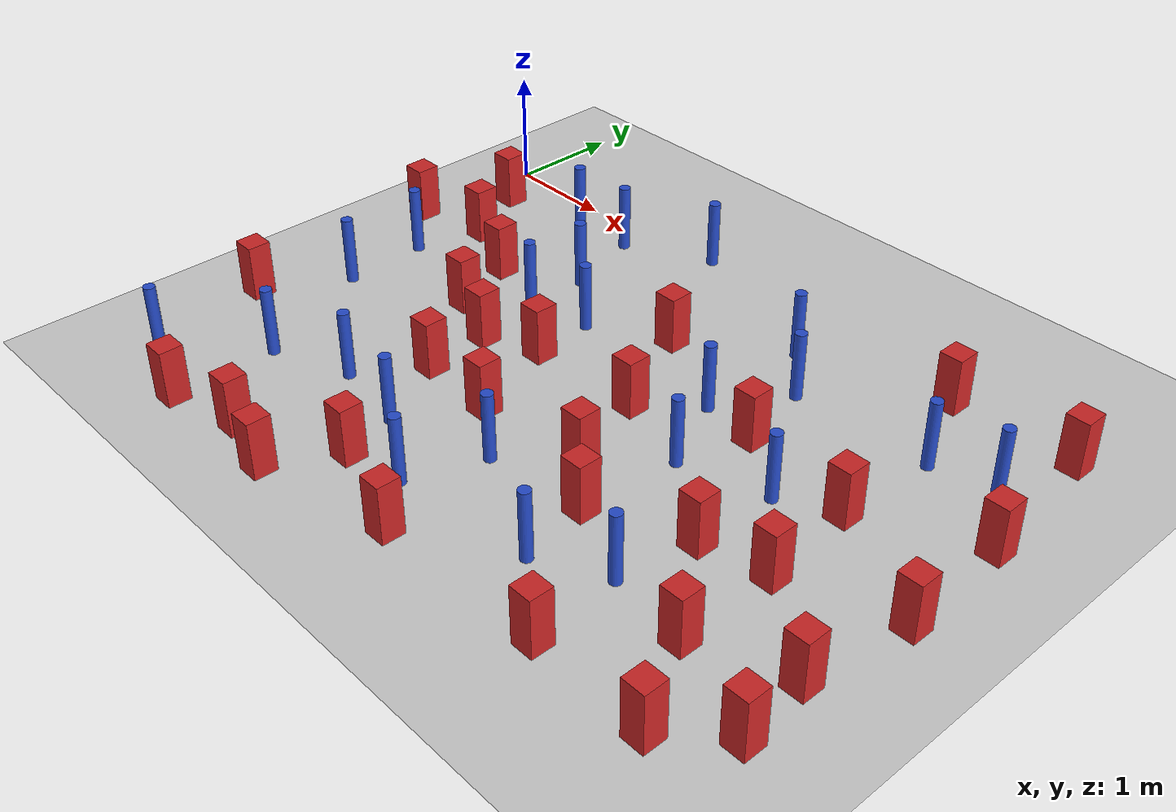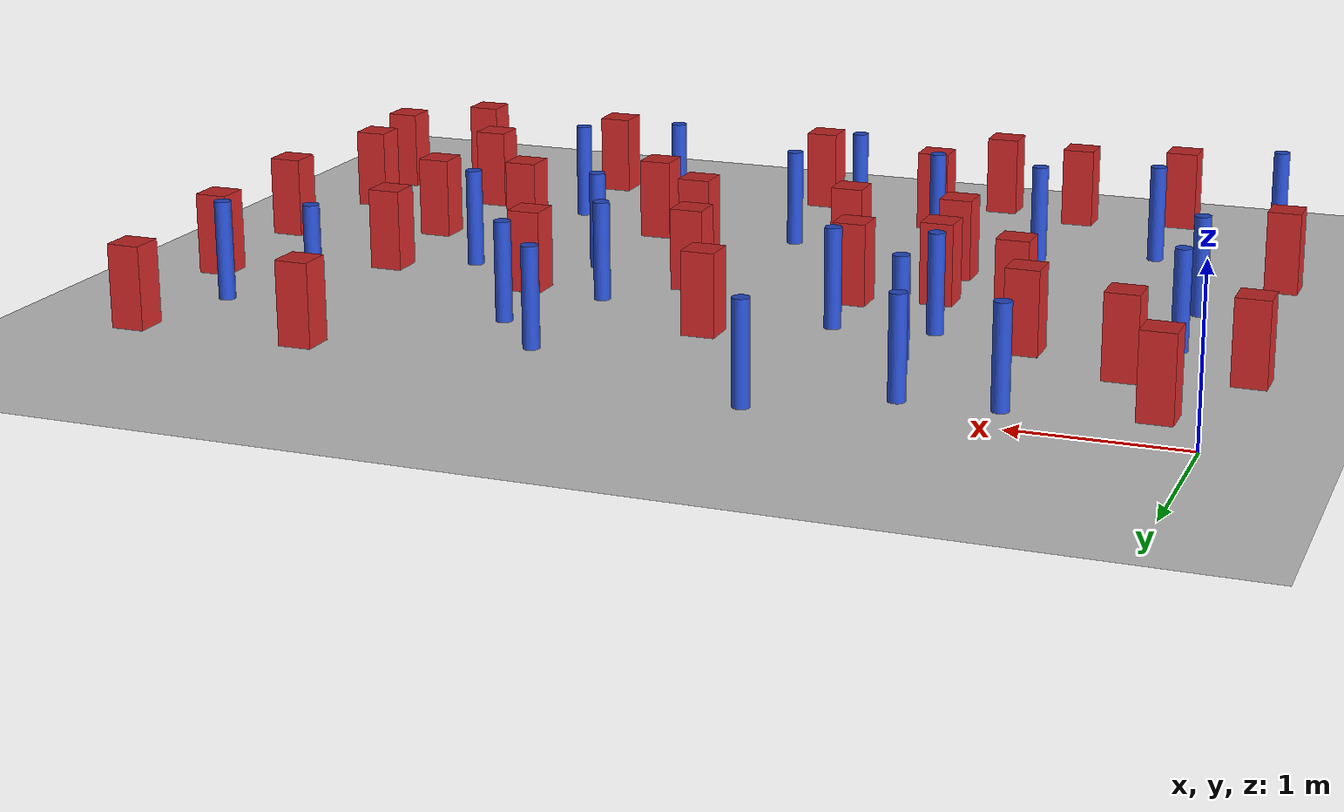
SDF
<sdf version="1.6">
 <world name="default">
  <model name="ground_plane">
   <static>1</static>
   <link name="link">
    <collision name="collision">
     <geometry><plane><normal>0 0 1</normal><size>100 100</size></plane></geometry>
     <surface><friction><ode><mu>100</mu><mu2>50</mu2></ode></friction></surface>
    </collision>
    <visual name="visual">
     <cast_shadows>0</cast_shadows>
     <geometry><plane><normal>0 0 1</normal><size>100 100</size></plane></geometry>
     <material>
      <ambient>1.0 1.0 1.0 1.0</ambient>
      <diffuse>0.8 0.8 0.8 1.0</diffuse>
      <specular>0.01 0.01 0.01 1.000000</specular>
     </material>
    </visual>
   </link>
  </model>
  <model name="NamedLocations">
   <static>true</static>
   <link name="DefaultStart"><pose>8.5 0 0 0 0 3.14</pose></link>
  </model>
  <model name="square_post_obstacle3">
   <static>true</static>
   <pose>3.03705830512 -1.04017219232 8.22691968438e-08 7.2212513382e-06 -7.54495500217e-07 2.29674213826e-05</pose>
   <link name="link">
    <pose>0 0 0.25 0 -0 0</pose>
    <inertial>
     <mass>100</mass>
     <inertia>
      <ixx>0.166667</ixx>
      <ixy>0</ixy>
      <ixz>0</ixz>
      <iyy>0.166667</iyy>
      <iyz>0</iyz>
      <izz>0.166667</izz>
     </inertia>
    </inertial>
    <collision name="collision"><geometry><box><size>.2 .2 .5</size></box></geometry></collision>
    <visual name="visual">
     <geometry><box><size>.2 .2 .5</size></box></geometry>
     <material>
      <script><name>Gazebo/Red</name><uri>file://media/materials/scripts/gazebo.material</uri></script>
     </material>
    </visual>
   </link>
  </model>
  <model name="square_post_obstacle12">
   <static>true</static>
   <pose>1.9961251198 -2.69683768258 8.22691968438e-08 7.2212513382e-06 -7.54495500217e-07 2.29674213826e-05</pose>
   <link name="link">
    <pose>0 0 0.25 0 -0 0</pose>
    <inertial>
     <mass>100</mass>
     <inertia>
      <ixx>0.166667</ixx>
      <ixy>0</ixy>
      <ixz>0</ixz>
      <iyy>0.166667</iyy>
      <iyz>0</iyz>
      <izz>0.166667</izz>
     </inertia>
    </inertial>
    <collision name="collision"><geometry><box><size>.2 .2 .5</size></box></geometry></collision>
    <visual name="visual">
     <geometry><box><size>.2 .2 .5</size></box></geometry>
     <material>
      <script><name>Gazebo/Red</name><uri>file://media/materials/scripts/gazebo.material</uri></script>
     </material>
    </visual>
   </link>
  </model>
  <model name="pole_obstacle9">
   <static>true</static>
   <pose>5.42084835923 -0.801809787041 2.88873142074e-08 -9.90536689837e-09 4.60219948989e-07 -1.2096599496e-07</pose>
   <link name="link">
    <pose>0 0 0.3 0 -0 0</pose>
    <inertial>
     <mass>1</mass>
     <inertia><ixx>0.145833</ixx><ixy>0</ixy><ixz>0</ixz><iyy>0.145833</iyy><iyz>0</iyz><izz>0.125</izz></inertia>
    </inertial>
    <collision name="collision">
     <geometry><cylinder><radius>0.05</radius><length>.6</length></cylinder></geometry>
    </collision>
    <visual name="visual">
     <geometry><cylinder><radius>0.05</radius><length>.6</length></cylinder></geometry>
     <material>
      <script><name>Gazebo/Blue</name><uri>file://media/materials/scripts/gazebo.material</uri></script>
     </material>
    </visual>
   </link>
  </model>
  <model name="square_post_obstacle18">
   <static>true</static>
   <pose>4.81835636104 -4.06285529954 8.22691968438e-08 7.2212513382e-06 -7.54495500217e-07 2.29674213826e-05</pose>
   <link name="link">
    <pose>0 0 0.25 0 -0 0</pose>
    <inertial>
     <mass>100</mass>
     <inertia>
      <ixx>0.166667</ixx>
      <ixy>0</ixy>
      <ixz>0</ixz>
      <iyy>0.166667</iyy>
      <iyz>0</iyz>
      <izz>0.166667</izz>
     </inertia>
    </inertial>
    <collision name="collision"><geometry><box><size>.2 .2 .5</size></box></geometry></collision>
    <visual name="visual">
     <geometry><box><size>.2 .2 .5</size></box></geometry>
     <material>
      <script><name>Gazebo/Red</name><uri>file://media/materials/scripts/gazebo.material</uri></script>
     </material>
    </visual>
   </link>
  </model>
  <model name="pole_obstacle14">
   <static>true</static>
   <pose>1.79109142378 -1.48081458562 2.88873142074e-08 -9.90536689672e-09 4.60219948993e-07 -1.20965994959e-07</pose>
   <link name="link">
    <pose>0 0 0.3 0 -0 0</pose>
    <inertial>
     <mass>1</mass>
     <inertia><ixx>0.145833</ixx><ixy>0</ixy><ixz>0</ixz><iyy>0.145833</iyy><iyz>0</iyz><izz>0.125</izz></inertia>
    </inertial>
    <collision name="collision">
     <geometry><cylinder><radius>0.05</radius><length>.6</length></cylinder></geometry>
    </collision>
    <visual name="visual">
     <geometry><cylinder><radius>0.05</radius><length>.6</length></cylinder></geometry>
     <material>
      <script><name>Gazebo/Blue</name><uri>file://media/materials/scripts/gazebo.material</uri></script>
     </material>
    </visual>
   </link>
  </model>
  <model name="pole_obstacle20">
   <static>true</static>
   <pose>4.75549394992 -3.29048217303 2.88873142074e-08 -9.90536690245e-09 4.6021994898e-07 -1.20965994966e-07</pose>
   <link name="link">
    <pose>0 0 0.3 0 -0 0</pose>
    <inertial>
     <mass>1</mass>
     <inertia><ixx>0.145833</ixx><ixy>0</ixy><ixz>0</ixz><iyy>0.145833</iyy><iyz>0</iyz><izz>0.125</izz></inertia>
    </inertial>
    <collision name="collision">
     <geometry><cylinder><radius>0.05</radius><length>.6</length></cylinder></geometry>
    </collision>
    <visual name="visual">
     <geometry><cylinder><radius>0.05</radius><length>.6</length></cylinder></geometry>
     <material>
      <script><name>Gazebo/Blue</name><uri>file://media/materials/scripts/gazebo.material</uri></script>
     </material>
    </visual>
   </link>
  </model>
  <model name="pole_obstacle27">
   <static>true</static>
   <pose>0.276519090718 -4.1411408936 2.88873142074e-08 -9.90536689592e-09 4.60219948995e-07 -1.20965994956e-07</pose>
   <link name="link">
    <pose>0 0 0.3 0 -0 0</pose>
    <inertial>
     <mass>1</mass>
     <inertia><ixx>0.145833</ixx><ixy>0</ixy><ixz>0</ixz><iyy>0.145833</iyy><iyz>0</iyz><izz>0.125</izz></inertia>
    </inertial>
    <collision name="collision">
     <geometry><cylinder><radius>0.05</radius><length>.6</length></cylinder></geometry>
    </collision>
    <visual name="visual">
     <geometry><cylinder><radius>0.05</radius><length>.6</length></cylinder></geometry>
     <material>
      <script><name>Gazebo/Blue</name><uri>file://media/materials/scripts/gazebo.material</uri></script>
     </material>
    </visual>
   </link>
  </model>
  <model name="pole_obstacle36">
   <static>true</static>
   <pose>2.37809489842 0.126536309214 2.88873142074e-08 -9.90536689314e-09 4.60219949002e-07 -1.20965994953e-07</pose>
   <link name="link">
    <pose>0 0 0.3 0 -0 0</pose>
    <inertial>
     <mass>1</mass>
     <inertia><ixx>0.145833</ixx><ixy>0</ixy><ixz>0</ixz><iyy>0.145833</iyy><iyz>0</iyz><izz>0.125</izz></inertia>
    </inertial>
    <collision name="collision">
     <geometry><cylinder><radius>0.05</radius><length>.6</length></cylinder></geometry>
    </collision>
    <visual name="visual">
     <geometry><cylinder><radius>0.05</radius><length>.6</length></cylinder></geometry>
     <material>
      <script><name>Gazebo/Blue</name><uri>file://media/materials/scripts/gazebo.material</uri></script>
     </material>
    </visual>
   </link>
  </model>
  <model name="square_post_obstacle36">
   <static>true</static>
   <pose>1.43506323926 -1.91082934601 8.22691968438e-08 7.2212513382e-06 -7.54495500217e-07 2.29674213826e-05</pose>
   <link name="link">
    <pose>0 0 0.25 0 -0 0</pose>
    <inertial>
     <mass>100</mass>
     <inertia>
      <ixx>0.166667</ixx>
      <ixy>0</ixy>
      <ixz>0</ixz>
      <iyy>0.166667</iyy>
      <iyz>0</iyz>
      <izz>0.166667</izz>
     </inertia>
    </inertial>
    <collision name="collision"><geometry><box><size>.2 .2 .5</size></box></geometry></collision>
    <visual name="visual">
     <geometry><box><size>.2 .2 .5</size></box></geometry>
     <material>
      <script><name>Gazebo/Red</name><uri>file://media/materials/scripts/gazebo.material</uri></script>
     </material>
    </visual>
   </link>
  </model>
  <model name="square_post_obstacle39">
   <static>true</static>
   <pose>0.291065183571 -0.443880941189 8.22691968438e-08 7.2212513382e-06 -7.54495500217e-07 2.29674213826e-05</pose>
   <link name="link">
    <pose>0 0 0.25 0 -0 0</pose>
    <inertial>
     <mass>100</mass>
     <inertia>
      <ixx>0.166667</ixx>
      <ixy>0</ixy>
      <ixz>0</ixz>
      <iyy>0.166667</iyy>
      <iyz>0</iyz>
      <izz>0.166667</izz>
     </inertia>
    </inertial>
    <collision name="collision"><geometry><box><size>.2 .2 .5</size></box></geometry></collision>
    <visual name="visual">
     <geometry><box><size>.2 .2 .5</size></box></geometry>
     <material>
      <script><name>Gazebo/Red</name><uri>file://media/materials/scripts/gazebo.material</uri></script>
     </material>
    </visual>
   </link>
  </model>
  <model name="pole_obstacle40">
   <static>true</static>
   <pose>0.934463896359 -3.48514730612 2.88873142074e-08 -9.90536689636e-09 4.60219948994e-07 -1.20965994958e-07</pose>
   <link name="link">
    <pose>0 0 0.3 0 -0 0</pose>
    <inertial>
     <mass>1</mass>
     <inertia><ixx>0.145833</ixx><ixy>0</ixy><ixz>0</ixz><iyy>0.145833</iyy><iyz>0</iyz><izz>0.125</izz></inertia>
    </inertial>
    <collision name="collision">
     <geometry><cylinder><radius>0.05</radius><length>.6</length></cylinder></geometry>
    </collision>
    <visual name="visual">
     <geometry><cylinder><radius>0.05</radius><length>.6</length></cylinder></geometry>
     <material>
      <script><name>Gazebo/Blue</name><uri>file://media/materials/scripts/gazebo.material</uri></script>
     </material>
    </visual>
   </link>
  </model>
  <model name="pole_obstacle44">
   <static>true</static>
   <pose>4.18805613553 -3.57865037211 2.88873142074e-08 -9.90536690245e-09 4.6021994898e-07 -1.20965994966e-07</pose>
   <link name="link">
    <pose>0 0 0.3 0 -0 0</pose>
    <inertial>
     <mass>1</mass>
     <inertia><ixx>0.145833</ixx><ixy>0</ixy><ixz>0</ixz><iyy>0.145833</iyy><iyz>0</iyz><izz>0.125</izz></inertia>
    </inertial>
    <collision name="collision">
     <geometry><cylinder><radius>0.05</radius><length>.6</length></cylinder></geometry>
    </collision>
    <visual name="visual">
     <geometry><cylinder><radius>0.05</radius><length>.6</length></cylinder></geometry>
     <material>
      <script><name>Gazebo/Blue</name><uri>file://media/materials/scripts/gazebo.material</uri></script>
     </material>
    </visual>
   </link>
  </model>
  <model name="square_post_obstacle43">
   <static>true</static>
   <pose>3.32970911712 -4.12108888041 8.22691968438e-08 7.22125133819e-06 -7.54495500217e-07 2.29674213826e-05</pose>
   <link name="link">
    <pose>0 0 0.25 0 -0 0</pose>
    <inertial>
     <mass>100</mass>
     <inertia>
      <ixx>0.166667</ixx>
      <ixy>0</ixy>
      <ixz>0</ixz>
      <iyy>0.166667</iyy>
      <iyz>0</iyz>
      <izz>0.166667</izz>
     </inertia>
    </inertial>
    <collision name="collision"><geometry><box><size>.2 .2 .5</size></box></geometry></collision>
    <visual name="visual">
     <geometry><box><size>.2 .2 .5</size></box></geometry>
     <material>
      <script><name>Gazebo/Red</name><uri>file://media/materials/scripts/gazebo.material</uri></script>
     </material>
    </visual>
   </link>
  </model>
  <model name="square_post_obstacle49">
   <static>true</static>
   <pose>2.70418464401 -2.73662805197 8.22691968438e-08 7.2212513382e-06 -7.54495500217e-07 2.29674213826e-05</pose>
   <link name="link">
    <pose>0 0 0.25 0 -0 0</pose>
    <inertial>
     <mass>100</mass>
     <inertia>
      <ixx>0.166667</ixx>
      <ixy>0</ixy>
      <ixz>0</ixz>
      <iyy>0.166667</iyy>
      <iyz>0</iyz>
      <izz>0.166667</izz>
     </inertia>
    </inertial>
    <collision name="collision"><geometry><box><size>.2 .2 .5</size></box></geometry></collision>
    <visual name="visual">
     <geometry><box><size>.2 .2 .5</size></box></geometry>
     <material>
      <script><name>Gazebo/Red</name><uri>file://media/materials/scripts/gazebo.material</uri></script>
     </material>
    </visual>
   </link>
  </model>
  <model name="square_post_obstacle54">
   <static>true</static>
   <pose>3.44279602956 -1.89878284545 8.22691968438e-08 7.2212513382e-06 -7.54495500217e-07 2.29674213826e-05</pose>
   <link name="link">
    <pose>0 0 0.25 0 -0 0</pose>
    <inertial>
     <mass>100</mass>
     <inertia>
      <ixx>0.166667</ixx>
      <ixy>0</ixy>
      <ixz>0</ixz>
      <iyy>0.166667</iyy>
      <iyz>0</iyz>
      <izz>0.166667</izz>
     </inertia>
    </inertial>
    <collision name="collision"><geometry><box><size>.2 .2 .5</size></box></geometry></collision>
    <visual name="visual">
     <geometry><box><size>.2 .2 .5</size></box></geometry>
     <material>
      <script><name>Gazebo/Red</name><uri>file://media/materials/scripts/gazebo.material</uri></script>
     </material>
    </visual>
   </link>
  </model>
  <model name="square_post_obstacle55">
   <static>true</static>
   <pose>6.15597478528 -0.0342775204876 8.22691968438e-08 7.2212513382e-06 -7.54495500217e-07 2.29674213826e-05</pose>
   <link name="link">
    <pose>0 0 0.25 0 -0 0</pose>
    <inertial>
     <mass>100</mass>
     <inertia>
      <ixx>0.166667</ixx>
      <ixy>0</ixy>
      <ixz>0</ixz>
      <iyy>0.166667</iyy>
      <iyz>0</iyz>
      <izz>0.166667</izz>
     </inertia>
    </inertial>
    <collision name="collision"><geometry><box><size>.2 .2 .5</size></box></geometry></collision>
    <visual name="visual">
     <geometry><box><size>.2 .2 .5</size></box></geometry>
     <material>
      <script><name>Gazebo/Red</name><uri>file://media/materials/scripts/gazebo.material</uri></script>
     </material>
    </visual>
   </link>
  </model>
  <model name="square_post_obstacle63">
   <static>true</static>
   <pose>5.36519493427 -1.69363180648 8.22691968438e-08 7.2212513382e-06 -7.54495500217e-07 2.29674213826e-05</pose>
   <link name="link">
    <pose>0 0 0.25 0 -0 0</pose>
    <inertial>
     <mass>100</mass>
     <inertia>
      <ixx>0.166667</ixx>
      <ixy>0</ixy>
      <ixz>0</ixz>
      <iyy>0.166667</iyy>
      <iyz>0</iyz>
      <izz>0.166667</izz>
     </inertia>
    </inertial>
    <collision name="collision"><geometry><box><size>.2 .2 .5</size></box></geometry></collision>
    <visual name="visual">
     <geometry><box><size>.2 .2 .5</size></box></geometry>
     <material>
      <script><name>Gazebo/Red</name><uri>file://media/materials/scripts/gazebo.material</uri></script>
     </material>
    </visual>
   </link>
  </model>
  <model name="pole_obstacle71">
   <static>true</static>
   <pose>0.417127205082 -1.63516056305 2.88873142074e-08 -9.90536689905e-09 4.60219948988e-07 -1.2096599496e-07</pose>
   <link name="link">
    <pose>0 0 0.3 0 -0 0</pose>
    <inertial>
     <mass>1</mass>
     <inertia><ixx>0.145833</ixx><ixy>0</ixy><ixz>0</ixz><iyy>0.145833</iyy><iyz>0</iyz><izz>0.125</izz></inertia>
    </inertial>
    <collision name="collision">
     <geometry><cylinder><radius>0.05</radius><length>.6</length></cylinder></geometry>
    </collision>
    <visual name="visual">
     <geometry><cylinder><radius>0.05</radius><length>.6</length></cylinder></geometry>
     <material>
      <script><name>Gazebo/Blue</name><uri>file://media/materials/scripts/gazebo.material</uri></script>
     </material>
    </visual>
   </link>
  </model>
  <model name="square_post_obstacle76">
   <static>true</static>
   <pose>2.43019952593 -1.94093527192 8.22691968438e-08 7.22125133819e-06 -7.54495500217e-07 2.29674213826e-05</pose>
   <link name="link">
    <pose>0 0 0.25 0 -0 0</pose>
    <inertial>
     <mass>100</mass>
     <inertia>
      <ixx>0.166667</ixx>
      <ixy>0</ixy>
      <ixz>0</ixz>
      <iyy>0.166667</iyy>
      <iyz>0</iyz>
      <izz>0.166667</izz>
     </inertia>
    </inertial>
    <collision name="collision"><geometry><box><size>.2 .2 .5</size></box></geometry></collision>
    <visual name="visual">
     <geometry><box><size>.2 .2 .5</size></box></geometry>
     <material>
      <script><name>Gazebo/Red</name><uri>file://media/materials/scripts/gazebo.material</uri></script>
     </material>
    </visual>
   </link>
  </model>
  <model name="pole_obstacle74">
   <static>true</static>
   <pose>1.84000628943 -0.957431576368 2.88873142074e-08 -9.90536689879e-09 4.60219948988e-07 -1.20965994961e-07</pose>
   <link name="link">
    <pose>0 0 0.3 0 -0 0</pose>
    <inertial>
     <mass>1</mass>
     <inertia><ixx>0.145833</ixx><ixy>0</ixy><ixz>0</ixz><iyy>0.145833</iyy><iyz>0</iyz><izz>0.125</izz></inertia>
    </inertial>
    <collision name="collision">
     <geometry><cylinder><radius>0.05</radius><length>.6</length></cylinder></geometry>
    </collision>
    <visual name="visual">
     <geometry><cylinder><radius>0.05</radius><length>.6</length></cylinder></geometry>
     <material>
      <script><name>Gazebo/Blue</name><uri>file://media/materials/scripts/gazebo.material</uri></script>
     </material>
    </visual>
   </link>
  </model>
  <model name="pole_obstacle77">
   <static>true</static>
   <pose>2.96060390333 -3.72544215415 2.88873142074e-08 -9.90536690232e-09 4.6021994898e-07 -1.20965994968e-07</pose>
   <link name="link">
    <pose>0 0 0.3 0 -0 0</pose>
    <inertial>
     <mass>1</mass>
     <inertia><ixx>0.145833</ixx><ixy>0</ixy><ixz>0</ixz><iyy>0.145833</iyy><iyz>0</iyz><izz>0.125</izz></inertia>
    </inertial>
    <collision name="collision">
     <geometry><cylinder><radius>0.05</radius><length>.6</length></cylinder></geometry>
    </collision>
    <visual name="visual">
     <geometry><cylinder><radius>0.05</radius><length>.6</length></cylinder></geometry>
     <material>
      <script><name>Gazebo/Blue</name><uri>file://media/materials/scripts/gazebo.material</uri></script>
     </material>
    </visual>
   </link>
  </model>
  <model name="pole_obstacle78">
   <static>true</static>
   <pose>4.20488533083 -0.853488228103 2.88873142074e-08 -9.90536689837e-09 4.60219948989e-07 -1.2096599496e-07</pose>
   <link name="link">
    <pose>0 0 0.3 0 -0 0</pose>
    <inertial>
     <mass>1</mass>
     <inertia><ixx>0.145833</ixx><ixy>0</ixy><ixz>0</ixz><iyy>0.145833</iyy><iyz>0</iyz><izz>0.125</izz></inertia>
    </inertial>
    <collision name="collision">
     <geometry><cylinder><radius>0.05</radius><length>.6</length></cylinder></geometry>
    </collision>
    <visual name="visual">
     <geometry><cylinder><radius>0.05</radius><length>.6</length></cylinder></geometry>
     <material>
      <script><name>Gazebo/Blue</name><uri>file://media/materials/scripts/gazebo.material</uri></script>
     </material>
    </visual>
   </link>
  </model>
  <model name="pole_obstacle82">
   <static>true</static>
   <pose>5.95220081102 -0.693286450828 2.88873142074e-08 -9.90536689837e-09 4.60219948989e-07 -1.2096599496e-07</pose>
   <link name="link">
    <pose>0 0 0.3 0 -0 0</pose>
    <inertial>
     <mass>1</mass>
     <inertia><ixx>0.145833</ixx><ixy>0</ixy><ixz>0</ixz><iyy>0.145833</iyy><iyz>0</iyz><izz>0.125</izz></inertia>
    </inertial>
    <collision name="collision">
     <geometry><cylinder><radius>0.05</radius><length>.6</length></cylinder></geometry>
    </collision>
    <visual name="visual">
     <geometry><cylinder><radius>0.05</radius><length>.6</length></cylinder></geometry>
     <material>
      <script><name>Gazebo/Blue</name><uri>file://media/materials/scripts/gazebo.material</uri></script>
     </material>
    </visual>
   </link>
  </model>
  <model name="square_post_obstacle80">
   <static>true</static>
   <pose>6.35391713439 -2.21293032174 8.22691968438e-08 7.2212513382e-06 -7.54495500217e-07 2.29674213826e-05</pose>
   <link name="link">
    <pose>0 0 0.25 0 -0 0</pose>
    <inertial>
     <mass>100</mass>
     <inertia>
      <ixx>0.166667</ixx>
      <ixy>0</ixy>
      <ixz>0</ixz>
      <iyy>0.166667</iyy>
      <iyz>0</iyz>
      <izz>0.166667</izz>
     </inertia>
    </inertial>
    <collision name="collision"><geometry><box><size>.2 .2 .5</size></box></geometry></collision>
    <visual name="visual">
     <geometry><box><size>.2 .2 .5</size></box></geometry>
     <material>
      <script><name>Gazebo/Red</name><uri>file://media/materials/scripts/gazebo.material</uri></script>
     </material>
    </visual>
   </link>
  </model>
  <model name="square_post_obstacle81">
   <static>true</static>
   <pose>3.67498733498 -2.61809917828 8.22691968438e-08 7.2212513382e-06 -7.54495500217e-07 2.29674213826e-05</pose>
   <link name="link">
    <pose>0 0 0.25 0 -0 0</pose>
    <inertial>
     <mass>100</mass>
     <inertia>
      <ixx>0.166667</ixx>
      <ixy>0</ixy>
      <ixz>0</ixz>
      <iyy>0.166667</iyy>
      <iyz>0</iyz>
      <izz>0.166667</izz>
     </inertia>
    </inertial>
    <collision name="collision"><geometry><box><size>.2 .2 .5</size></box></geometry></collision>
    <visual name="visual">
     <geometry><box><size>.2 .2 .5</size></box></geometry>
     <material>
      <script><name>Gazebo/Red</name><uri>file://media/materials/scripts/gazebo.material</uri></script>
     </material>
    </visual>
   </link>
  </model>
  <model name="square_post_obstacle84">
   <static>true</static>
   <pose>6.20035590213 -3.09484886793 8.22691968438e-08 7.2212513382e-06 -7.54495500217e-07 2.29674213826e-05</pose>
   <link name="link">
    <pose>0 0 0.25 0 -0 0</pose>
    <inertial>
     <mass>100</mass>
     <inertia>
      <ixx>0.166667</ixx>
      <ixy>0</ixy>
      <ixz>0</ixz>
      <iyy>0.166667</iyy>
      <iyz>0</iyz>
      <izz>0.166667</izz>
     </inertia>
    </inertial>
    <collision name="collision"><geometry><box><size>.2 .2 .5</size></box></geometry></collision>
    <visual name="visual">
     <geometry><box><size>.2 .2 .5</size></box></geometry>
     <material>
      <script><name>Gazebo/Red</name><uri>file://media/materials/scripts/gazebo.material</uri></script>
     </material>
    </visual>
   </link>
  </model>
  <model name="pole_obstacle107">
   <static>true</static>
   <pose>1.6254071019 -3.22953182577 2.88873142074e-08 -9.90536689791e-09 4.6021994899e-07 -1.20965994959e-07</pose>
   <link name="link">
    <pose>0 0 0.3 0 -0 0</pose>
    <inertial>
     <mass>1</mass>
     <inertia><ixx>0.145833</ixx><ixy>0</ixy><ixz>0</ixz><iyy>0.145833</iyy><iyz>0</iyz><izz>0.125</izz></inertia>
    </inertial>
    <collision name="collision">
     <geometry><cylinder><radius>0.05</radius><length>.6</length></cylinder></geometry>
    </collision>
    <visual name="visual">
     <geometry><cylinder><radius>0.05</radius><length>.6</length></cylinder></geometry>
     <material>
      <script><name>Gazebo/Blue</name><uri>file://media/materials/scripts/gazebo.material</uri></script>
     </material>
    </visual>
   </link>
  </model>
  <model name="square_post_obstacle102">
   <static>true</static>
   <pose>4.88188694029 -2.64655618236 8.22691968438e-08 7.2212513382e-06 -7.54495500217e-07 2.29674213826e-05</pose>
   <link name="link">
    <pose>0 0 0.25 0 -0 0</pose>
    <inertial>
     <mass>100</mass>
     <inertia>
      <ixx>0.166667</ixx>
      <ixy>0</ixy>
      <ixz>0</ixz>
      <iyy>0.166667</iyy>
      <iyz>0</iyz>
      <izz>0.166667</izz>
     </inertia>
    </inertial>
    <collision name="collision"><geometry><box><size>.2 .2 .5</size></box></geometry></collision>
    <visual name="visual">
     <geometry><box><size>.2 .2 .5</size></box></geometry>
     <material>
      <script><name>Gazebo/Red</name><uri>file://media/materials/scripts/gazebo.material</uri></script>
     </material>
    </visual>
   </link>
  </model>
  <model name="pole_obstacle136">
   <static>true</static>
   <pose>3.83574169156 -0.425570946888 2.88873142074e-08 -9.90536689307e-09 4.60219949002e-07 -1.20965994954e-07</pose>
   <link name="link">
    <pose>0 0 0.3 0 -0 0</pose>
    <inertial>
     <mass>1</mass>
     <inertia><ixx>0.145833</ixx><ixy>0</ixy><ixz>0</ixz><iyy>0.145833</iyy><iyz>0</iyz><izz>0.125</izz></inertia>
    </inertial>
    <collision name="collision">
     <geometry><cylinder><radius>0.05</radius><length>.6</length></cylinder></geometry>
    </collision>
    <visual name="visual">
     <geometry><cylinder><radius>0.05</radius><length>.6</length></cylinder></geometry>
     <material>
      <script><name>Gazebo/Blue</name><uri>file://media/materials/scripts/gazebo.material</uri></script>
     </material>
    </visual>
   </link>
  </model>
  <model name="square_post_obstacle118">
   <static>true</static>
   <pose>6.30571054112 -1.22626909529 8.22691968438e-08 7.2212513382e-06 -7.54495500217e-07 2.29674213826e-05</pose>
   <link name="link">
    <pose>0 0 0.25 0 -0 0</pose>
    <inertial>
     <mass>100</mass>
     <inertia>
      <ixx>0.166667</ixx>
      <ixy>0</ixy>
      <ixz>0</ixz>
      <iyy>0.166667</iyy>
      <iyz>0</iyz>
      <izz>0.166667</izz>
     </inertia>
    </inertial>
    <collision name="collision"><geometry><box><size>.2 .2 .5</size></box></geometry></collision>
    <visual name="visual">
     <geometry><box><size>.2 .2 .5</size></box></geometry>
     <material>
      <script><name>Gazebo/Red</name><uri>file://media/materials/scripts/gazebo.material</uri></script>
     </material>
    </visual>
   </link>
  </model>
  <model name="square_post_obstacle120">
   <static>true</static>
   <pose>4.34455785927 -1.52694982655 8.22691968438e-08 7.2212513382e-06 -7.54495500217e-07 2.29674213826e-05</pose>
   <link name="link">
    <pose>0 0 0.25 0 -0 0</pose>
    <inertial>
     <mass>100</mass>
     <inertia>
      <ixx>0.166667</ixx>
      <ixy>0</ixy>
      <ixz>0</ixz>
      <iyy>0.166667</iyy>
      <iyz>0</iyz>
      <izz>0.166667</izz>
     </inertia>
    </inertial>
    <collision name="collision"><geometry><box><size>.2 .2 .5</size></box></geometry></collision>
    <visual name="visual">
     <geometry><box><size>.2 .2 .5</size></box></geometry>
     <material>
      <script><name>Gazebo/Red</name><uri>file://media/materials/scripts/gazebo.material</uri></script>
     </material>
    </visual>
   </link>
  </model>
  <model name="square_post_obstacle121">
   <static>true</static>
   <pose>1.22984521523 -1.33582807082 8.22691968438e-08 7.2212513382e-06 -7.54495500217e-07 2.29674213826e-05</pose>
   <link name="link">
    <pose>0 0 0.25 0 -0 0</pose>
    <inertial>
     <mass>100</mass>
     <inertia>
      <ixx>0.166667</ixx>
      <ixy>0</ixy>
      <ixz>0</ixz>
      <iyy>0.166667</iyy>
      <iyz>0</iyz>
      <izz>0.166667</izz>
     </inertia>
    </inertial>
    <collision name="collision"><geometry><box><size>.2 .2 .5</size></box></geometry></collision>
    <visual name="visual">
     <geometry><box><size>.2 .2 .5</size></box></geometry>
     <material>
      <script><name>Gazebo/Red</name><uri>file://media/materials/scripts/gazebo.material</uri></script>
     </material>
    </visual>
   </link>
  </model>
  <model name="square_post_obstacle122">
   <static>true</static>
   <pose>5.08522231821 -0.0623883740543 8.22691968438e-08 7.2212513382e-06 -7.54495500217e-07 2.29674213826e-05</pose>
   <link name="link">
    <pose>0 0 0.25 0 -0 0</pose>
    <inertial>
     <mass>100</mass>
     <inertia>
      <ixx>0.166667</ixx>
      <ixy>0</ixy>
      <ixz>0</ixz>
      <iyy>0.166667</iyy>
      <iyz>0</iyz>
      <izz>0.166667</izz>
     </inertia>
    </inertial>
    <collision name="collision"><geometry><box><size>.2 .2 .5</size></box></geometry></collision>
    <visual name="visual">
     <geometry><box><size>.2 .2 .5</size></box></geometry>
     <material>
      <script><name>Gazebo/Red</name><uri>file://media/materials/scripts/gazebo.material</uri></script>
     </material>
    </visual>
   </link>
  </model>
  <model name="square_post_obstacle123">
   <static>true</static>
   <pose>4.08386492266 -2.98659497327 8.22691968438e-08 7.2212513382e-06 -7.54495500217e-07 2.29674213826e-05</pose>
   <link name="link">
    <pose>0 0 0.25 0 -0 0</pose>
    <inertial>
     <mass>100</mass>
     <inertia>
      <ixx>0.166667</ixx>
      <ixy>0</ixy>
      <ixz>0</ixz>
      <iyy>0.166667</iyy>
      <iyz>0</iyz>
      <izz>0.166667</izz>
     </inertia>
    </inertial>
    <collision name="collision"><geometry><box><size>.2 .2 .5</size></box></geometry></collision>
    <visual name="visual">
     <geometry><box><size>.2 .2 .5</size></box></geometry>
     <material>
      <script><name>Gazebo/Red</name><uri>file://media/materials/scripts/gazebo.material</uri></script>
     </material>
    </visual>
   </link>
  </model>
  <model name="pole_obstacle140">
   <static>true</static>
   <pose>3.84799419947 -1.46541904409 2.88873142074e-08 -9.90536689395e-09 4.60219949e-07 -1.20965994953e-07</pose>
   <link name="link">
    <pose>0 0 0.3 0 -0 0</pose>
    <inertial>
     <mass>1</mass>
     <inertia><ixx>0.145833</ixx><ixy>0</ixy><ixz>0</ixz><iyy>0.145833</iyy><iyz>0</iyz><izz>0.125</izz></inertia>
    </inertial>
    <collision name="collision">
     <geometry><cylinder><radius>0.05</radius><length>.6</length></cylinder></geometry>
    </collision>
    <visual name="visual">
     <geometry><cylinder><radius>0.05</radius><length>.6</length></cylinder></geometry>
     <material>
      <script><name>Gazebo/Blue</name><uri>file://media/materials/scripts/gazebo.material</uri></script>
     </material>
    </visual>
   </link>
  </model>
  <model name="square_post_obstacle130">
   <static>true</static>
   <pose>1.94695780721 -2.12262764754 8.22691968438e-08 7.2212513382e-06 -7.54495500217e-07 2.29674213826e-05</pose>
   <link name="link">
    <pose>0 0 0.25 0 -0 0</pose>
    <inertial>
     <mass>100</mass>
     <inertia>
      <ixx>0.166667</ixx>
      <ixy>0</ixy>
      <ixz>0</ixz>
      <iyy>0.166667</iyy>
      <iyz>0</iyz>
      <izz>0.166667</izz>
     </inertia>
    </inertial>
    <collision name="collision"><geometry><box><size>.2 .2 .5</size></box></geometry></collision>
    <visual name="visual">
     <geometry><box><size>.2 .2 .5</size></box></geometry>
     <material>
      <script><name>Gazebo/Red</name><uri>file://media/materials/scripts/gazebo.material</uri></script>
     </material>
    </visual>
   </link>
  </model>
  <model name="square_post_obstacle131">
   <static>true</static>
   <pose>2.4654375011 -3.82063461845 8.22691968438e-08 7.2212513382e-06 -7.54495500217e-07 2.29674213826e-05</pose>
   <link name="link">
    <pose>0 0 0.25 0 -0 0</pose>
    <inertial>
     <mass>100</mass>
     <inertia>
      <ixx>0.166667</ixx>
      <ixy>0</ixy>
      <ixz>0</ixz>
      <iyy>0.166667</iyy>
      <iyz>0</iyz>
      <izz>0.166667</izz>
     </inertia>
    </inertial>
    <collision name="collision"><geometry><box><size>.2 .2 .5</size></box></geometry></collision>
    <visual name="visual">
     <geometry><box><size>.2 .2 .5</size></box></geometry>
     <material>
      <script><name>Gazebo/Red</name><uri>file://media/materials/scripts/gazebo.material</uri></script>
     </material>
    </visual>
   </link>
  </model>
  <model name="square_post_obstacle139">
   <static>true</static>
   <pose>0.611379766811 -1.0570797218 8.22691968438e-08 7.2212513382e-06 -7.54495500217e-07 2.29674213826e-05</pose>
   <link name="link">
    <pose>0 0 0.25 0 -0 0</pose>
    <inertial>
     <mass>100</mass>
     <inertia>
      <ixx>0.166667</ixx>
      <ixy>0</ixy>
      <ixz>0</ixz>
      <iyy>0.166667</iyy>
      <iyz>0</iyz>
      <izz>0.166667</izz>
     </inertia>
    </inertial>
    <collision name="collision"><geometry><box><size>.2 .2 .5</size></box></geometry></collision>
    <visual name="visual">
     <geometry><box><size>.2 .2 .5</size></box></geometry>
     <material>
      <script><name>Gazebo/Red</name><uri>file://media/materials/scripts/gazebo.material</uri></script>
     </material>
    </visual>
   </link>
  </model>
  <model name="pole_obstacle151">
   <static>true</static>
   <pose>4.15476049797 -2.11767099768 2.88873142074e-08 -9.90536690245e-09 4.6021994898e-07 -1.20965994966e-07</pose>
   <link name="link">
    <pose>0 0 0.3 0 -0 0</pose>
    <inertial>
     <mass>1</mass>
     <inertia><ixx>0.145833</ixx><ixy>0</ixy><ixz>0</ixz><iyy>0.145833</iyy><iyz>0</iyz><izz>0.125</izz></inertia>
    </inertial>
    <collision name="collision">
     <geometry><cylinder><radius>0.05</radius><length>.6</length></cylinder></geometry>
    </collision>
    <visual name="visual">
     <geometry><cylinder><radius>0.05</radius><length>.6</length></cylinder></geometry>
     <material>
      <script><name>Gazebo/Blue</name><uri>file://media/materials/scripts/gazebo.material</uri></script>
     </material>
    </visual>
   </link>
  </model>
  <model name="pole_obstacle153">
   <static>true</static>
   <pose>4.89638608414 -1.90839739125 2.88873142074e-08 -9.90536689445e-09 4.60219948999e-07 -1.20965994956e-07</pose>
   <link name="link">
    <pose>0 0 0.3 0 -0 0</pose>
    <inertial>
     <mass>1</mass>
     <inertia><ixx>0.145833</ixx><ixy>0</ixy><ixz>0</ixz><iyy>0.145833</iyy><iyz>0</iyz><izz>0.125</izz></inertia>
    </inertial>
    <collision name="collision">
     <geometry><cylinder><radius>0.05</radius><length>.6</length></cylinder></geometry>
    </collision>
    <visual name="visual">
     <geometry><cylinder><radius>0.05</radius><length>.6</length></cylinder></geometry>
     <material>
      <script><name>Gazebo/Blue</name><uri>file://media/materials/scripts/gazebo.material</uri></script>
     </material>
    </visual>
   </link>
  </model>
  <model name="square_post_obstacle142">
   <static>true</static>
   <pose>0.071001083052 -3.07878242798 8.22691968438e-08 7.2212513382e-06 -7.54495500217e-07 2.29674213826e-05</pose>
   <link name="link">
    <pose>0 0 0.25 0 -0 0</pose>
    <inertial>
     <mass>100</mass>
     <inertia>
      <ixx>0.166667</ixx>
      <ixy>0</ixy>
      <ixz>0</ixz>
      <iyy>0.166667</iyy>
      <iyz>0</iyz>
      <izz>0.166667</izz>
     </inertia>
    </inertial>
    <collision name="collision"><geometry><box><size>.2 .2 .5</size></box></geometry></collision>
    <visual name="visual">
     <geometry><box><size>.2 .2 .5</size></box></geometry>
     <material>
      <script><name>Gazebo/Red</name><uri>file://media/materials/scripts/gazebo.material</uri></script>
     </material>
    </visual>
   </link>
  </model>
  <model name="square_post_obstacle143">
   <static>true</static>
   <pose>-0.0618423853352 -1.19813843578 8.22691968438e-08 7.2212513382e-06 -7.54495500217e-07 2.29674213826e-05</pose>
   <link name="link">
    <pose>0 0 0.25 0 -0 0</pose>
    <inertial>
     <mass>100</mass>
     <inertia>
      <ixx>0.166667</ixx>
      <ixy>0</ixy>
      <ixz>0</ixz>
      <iyy>0.166667</iyy>
      <iyz>0</iyz>
      <izz>0.166667</izz>
     </inertia>
    </inertial>
    <collision name="collision"><geometry><box><size>.2 .2 .5</size></box></geometry></collision>
    <visual name="visual">
     <geometry><box><size>.2 .2 .5</size></box></geometry>
     <material>
      <script><name>Gazebo/Red</name><uri>file://media/materials/scripts/gazebo.material</uri></script>
     </material>
    </visual>
   </link>
  </model>
  <model name="square_post_obstacle144">
   <static>true</static>
   <pose>5.44558175526 -2.5311218658 8.22691968438e-08 7.2212513382e-06 -7.54495500217e-07 2.29674213826e-05</pose>
   <link name="link">
    <pose>0 0 0.25 0 -0 0</pose>
    <inertial>
     <mass>100</mass>
     <inertia>
      <ixx>0.166667</ixx>
      <ixy>0</ixy>
      <ixz>0</ixz>
      <iyy>0.166667</iyy>
      <iyz>0</iyz>
      <izz>0.166667</izz>
     </inertia>
    </inertial>
    <collision name="collision"><geometry><box><size>.2 .2 .5</size></box></geometry></collision>
    <visual name="visual">
     <geometry><box><size>.2 .2 .5</size></box></geometry>
     <material>
      <script><name>Gazebo/Red</name><uri>file://media/materials/scripts/gazebo.material</uri></script>
     </material>
    </visual>
   </link>
  </model>
  <model name="square_post_obstacle147">
   <static>true</static>
   <pose>2.14414794296 -4.38584023331 8.22691968438e-08 7.22125133819e-06 -7.54495500217e-07 2.29674213826e-05</pose>
   <link name="link">
    <pose>0 0 0.25 0 -0 0</pose>
    <inertial>
     <mass>100</mass>
     <inertia>
      <ixx>0.166667</ixx>
      <ixy>0</ixy>
      <ixz>0</ixz>
      <iyy>0.166667</iyy>
      <iyz>0</iyz>
      <izz>0.166667</izz>
     </inertia>
    </inertial>
    <collision name="collision"><geometry><box><size>.2 .2 .5</size></box></geometry></collision>
    <visual name="visual">
     <geometry><box><size>.2 .2 .5</size></box></geometry>
     <material>
      <script><name>Gazebo/Red</name><uri>file://media/materials/scripts/gazebo.material</uri></script>
     </material>
    </visual>
   </link>
  </model>
  <model name="pole_obstacle160">
   <static>true</static>
   <pose>0.448117975223 -2.37401821134 2.88873142074e-08 -9.90536689663e-09 4.60219948993e-07 -1.20965994959e-07</pose>
   <link name="link">
    <pose>0 0 0.3 0 -0 0</pose>
    <inertial>
     <mass>1</mass>
     <inertia><ixx>0.145833</ixx><ixy>0</ixy><ixz>0</ixz><iyy>0.145833</iyy><iyz>0</iyz><izz>0.125</izz></inertia>
    </inertial>
    <collision name="collision">
     <geometry><cylinder><radius>0.05</radius><length>.6</length></cylinder></geometry>
    </collision>
    <visual name="visual">
     <geometry><cylinder><radius>0.05</radius><length>.6</length></cylinder></geometry>
     <material>
      <script><name>Gazebo/Blue</name><uri>file://media/materials/scripts/gazebo.material</uri></script>
     </material>
    </visual>
   </link>
  </model>
  <model name="square_post_obstacle159">
   <static>true</static>
   <pose>5.83000862717 -4.07713889261 8.22691968438e-08 7.2212513382e-06 -7.54495500217e-07 2.29674213826e-05</pose>
   <link name="link">
    <pose>0 0 0.25 0 -0 0</pose>
    <inertial>
     <mass>100</mass>
     <inertia>
      <ixx>0.166667</ixx>
      <ixy>0</ixy>
      <ixz>0</ixz>
      <iyy>0.166667</iyy>
      <iyz>0</iyz>
      <izz>0.166667</izz>
     </inertia>
    </inertial>
    <collision name="collision"><geometry><box><size>.2 .2 .5</size></box></geometry></collision>
    <visual name="visual">
     <geometry><box><size>.2 .2 .5</size></box></geometry>
     <material>
      <script><name>Gazebo/Red</name><uri>file://media/materials/scripts/gazebo.material</uri></script>
     </material>
    </visual>
   </link>
  </model>
  <model name="pole_obstacle168">
   <static>true</static>
   <pose>2.37585581294 -1.38696411558 2.88873142074e-08 -9.90536689395e-09 4.60219949e-07 -1.20965994953e-07</pose>
   <link name="link">
    <pose>0 0 0.3 0 -0 0</pose>
    <inertial>
     <mass>1</mass>
     <inertia><ixx>0.145833</ixx><ixy>0</ixy><ixz>0</ixz><iyy>0.145833</iyy><iyz>0</iyz><izz>0.125</izz></inertia>
    </inertial>
    <collision name="collision">
     <geometry><cylinder><radius>0.05</radius><length>.6</length></cylinder></geometry>
    </collision>
    <visual name="visual">
     <geometry><cylinder><radius>0.05</radius><length>.6</length></cylinder></geometry>
     <material>
      <script><name>Gazebo/Blue</name><uri>file://media/materials/scripts/gazebo.material</uri></script>
     </material>
    </visual>
   </link>
  </model>
  <model name="pole_obstacle173">
   <static>true</static>
   <pose>3.19298927482 -3.08118370872 2.88873142074e-08 -9.90536690232e-09 4.6021994898e-07 -1.20965994968e-07</pose>
   <link name="link">
    <pose>0 0 0.3 0 -0 0</pose>
    <inertial>
     <mass>1</mass>
     <inertia><ixx>0.145833</ixx><ixy>0</ixy><ixz>0</ixz><iyy>0.145833</iyy><iyz>0</iyz><izz>0.125</izz></inertia>
    </inertial>
    <collision name="collision">
     <geometry><cylinder><radius>0.05</radius><length>.6</length></cylinder></geometry>
    </collision>
    <visual name="visual">
     <geometry><cylinder><radius>0.05</radius><length>.6</length></cylinder></geometry>
     <material>
      <script><name>Gazebo/Blue</name><uri>file://media/materials/scripts/gazebo.material</uri></script>
     </material>
    </visual>
   </link>
  </model>
  <model name="pole_obstacle178">
   <static>true</static>
   <pose>2.31971413811 -3.34071501789 2.88873142074e-08 -9.90536690232e-09 4.6021994898e-07 -1.20965994968e-07</pose>
   <link name="link">
    <pose>0 0 0.3 0 -0 0</pose>
    <inertial>
     <mass>1</mass>
     <inertia><ixx>0.145833</ixx><ixy>0</ixy><ixz>0</ixz><iyy>0.145833</iyy><iyz>0</iyz><izz>0.125</izz></inertia>
    </inertial>
    <collision name="collision">
     <geometry><cylinder><radius>0.05</radius><length>.6</length></cylinder></geometry>
    </collision>
    <visual name="visual">
     <geometry><cylinder><radius>0.05</radius><length>.6</length></cylinder></geometry>
     <material>
      <script><name>Gazebo/Blue</name><uri>file://media/materials/scripts/gazebo.material</uri></script>
     </material>
    </visual>
   </link>
  </model>
  <model name="pole_obstacle180">
   <static>true</static>
   <pose>1.08907814231 -0.281321795085 2.88873142074e-08 -9.90536690032e-09 4.60219948985e-07 -1.20965994964e-07</pose>
   <link name="link">
    <pose>0 0 0.3 0 -0 0</pose>
    <inertial>
     <mass>1</mass>
     <inertia><ixx>0.145833</ixx><ixy>0</ixy><ixz>0</ixz><iyy>0.145833</iyy><iyz>0</iyz><izz>0.125</izz></inertia>
    </inertial>
    <collision name="collision">
     <geometry><cylinder><radius>0.05</radius><length>.6</length></cylinder></geometry>
    </collision>
    <visual name="visual">
     <geometry><cylinder><radius>0.05</radius><length>.6</length></cylinder></geometry>
     <material>
      <script><name>Gazebo/Blue</name><uri>file://media/materials/scripts/gazebo.material</uri></script>
     </material>
    </visual>
   </link>
  </model>
  <model name="square_post_obstacle193">
   <static>true</static>
   <pose>5.44287351813 -3.38045202336 8.22691968438e-08 7.2212513382e-06 -7.54495500217e-07 2.29674213826e-05</pose>
   <link name="link">
    <pose>0 0 0.25 0 -0 0</pose>
    <inertial>
     <mass>100</mass>
     <inertia>
      <ixx>0.166667</ixx>
      <ixy>0</ixy>
      <ixz>0</ixz>
      <iyy>0.166667</iyy>
      <iyz>0</iyz>
      <izz>0.166667</izz>
     </inertia>
    </inertial>
    <collision name="collision"><geometry><box><size>.2 .2 .5</size></box></geometry></collision>
    <visual name="visual">
     <geometry><box><size>.2 .2 .5</size></box></geometry>
     <material>
      <script><name>Gazebo/Red</name><uri>file://media/materials/scripts/gazebo.material</uri></script>
     </material>
    </visual>
   </link>
  </model>
  <model name="square_post_obstacle195">
   <static>true</static>
   <pose>6.26529030115 -3.68693561313 8.22691968438e-08 7.2212513382e-06 -7.54495500217e-07 2.29674213826e-05</pose>
   <link name="link">
    <pose>0 0 0.25 0 -0 0</pose>
    <inertial>
     <mass>100</mass>
     <inertia>
      <ixx>0.166667</ixx>
      <ixy>0</ixy>
      <ixz>0</ixz>
      <iyy>0.166667</iyy>
      <iyz>0</iyz>
      <izz>0.166667</izz>
     </inertia>
    </inertial>
    <collision name="collision"><geometry><box><size>.2 .2 .5</size></box></geometry></collision>
    <visual name="visual">
     <geometry><box><size>.2 .2 .5</size></box></geometry>
     <material>
      <script><name>Gazebo/Red</name><uri>file://media/materials/scripts/gazebo.material</uri></script>
     </material>
    </visual>
   </link>
  </model>
  <model name="square_post_obstacle198">
   <static>true</static>
   <pose>0.94452774908 -4.39784209654 8.22691968438e-08 7.2212513382e-06 -7.54495500217e-07 2.29674213826e-05</pose>
   <link name="link">
    <pose>0 0 0.25 0 -0 0</pose>
    <inertial>
     <mass>100</mass>
     <inertia>
      <ixx>0.166667</ixx>
      <ixy>0</ixy>
      <ixz>0</ixz>
      <iyy>0.166667</iyy>
      <iyz>0</iyz>
      <izz>0.166667</izz>
     </inertia>
    </inertial>
    <collision name="collision"><geometry><box><size>.2 .2 .5</size></box></geometry></collision>
    <visual name="visual">
     <geometry><box><size>.2 .2 .5</size></box></geometry>
     <material>
      <script><name>Gazebo/Red</name><uri>file://media/materials/scripts/gazebo.material</uri></script>
     </material>
    </visual>
   </link>
  </model>
  <model name="pole_obstacle212">
   <static>true</static>
   <pose>1.64158479386 -0.248285743916 2.88873142074e-08 -9.90536690067e-09 4.60219948984e-07 -1.20965994965e-07</pose>
   <link name="link">
    <pose>0 0 0.3 0 -0 0</pose>
    <inertial>
     <mass>1</mass>
     <inertia><ixx>0.145833</ixx><ixy>0</ixy><ixz>0</ixz><iyy>0.145833</iyy><iyz>0</iyz><izz>0.125</izz></inertia>
    </inertial>
    <collision name="collision">
     <geometry><cylinder><radius>0.05</radius><length>.6</length></cylinder></geometry>
    </collision>
    <visual name="visual">
     <geometry><cylinder><radius>0.05</radius><length>.6</length></cylinder></geometry>
     <material>
      <script><name>Gazebo/Blue</name><uri>file://media/materials/scripts/gazebo.material</uri></script>
     </material>
    </visual>
   </link>
  </model>
  <model name="square_post_obstacle217">
   <static>true</static>
   <pose>1.59648406367 -4.24439206664 8.22691968438e-08 7.2212513382e-06 -7.54495500217e-07 2.29674213826e-05</pose>
   <link name="link">
    <pose>0 0 0.25 0 -0 0</pose>
    <inertial>
     <mass>100</mass>
     <inertia>
      <ixx>0.166667</ixx>
      <ixy>0</ixy>
      <ixz>0</ixz>
      <iyy>0.166667</iyy>
      <iyz>0</iyz>
      <izz>0.166667</izz>
     </inertia>
    </inertial>
    <collision name="collision"><geometry><box><size>.2 .2 .5</size></box></geometry></collision>
    <visual name="visual">
     <geometry><box><size>.2 .2 .5</size></box></geometry>
     <material>
      <script><name>Gazebo/Red</name><uri>file://media/materials/scripts/gazebo.material</uri></script>
     </material>
    </visual>
   </link>
  </model>
 </world>
</sdf>
